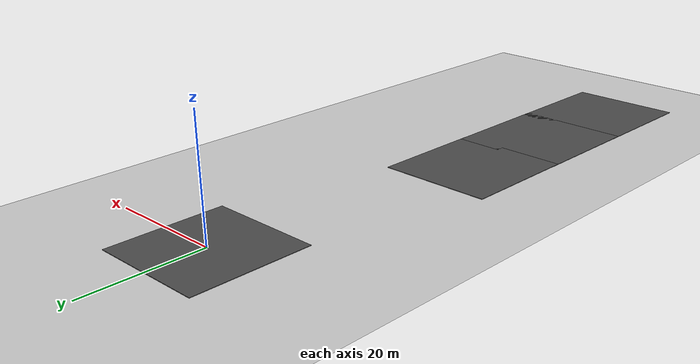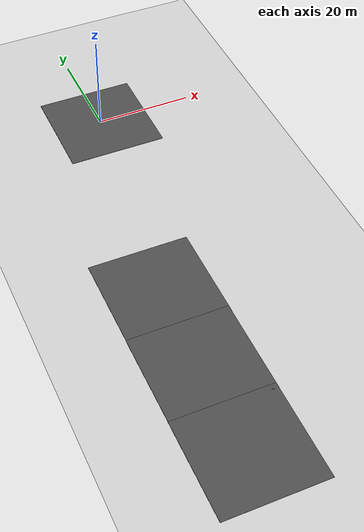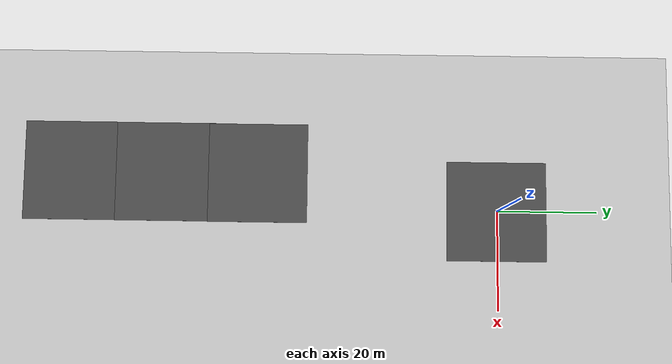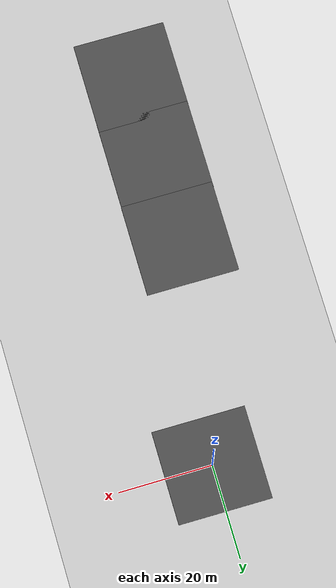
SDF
<sdf version="1.7">
 <world name="default">
  <model name="ground_plane">
   <static>1</static>
   <link name="link">
    <collision name="collision">
     <geometry><plane><normal>0 0 1</normal><size>100 100</size></plane></geometry>
     <surface><friction><ode><mu>100</mu><mu2>50</mu2></ode></friction></surface>
    </collision>
    <visual name="visual">
     <cast_shadows>0</cast_shadows>
     <geometry><plane><normal>0 0 1</normal><size>100 100</size></plane></geometry>
     <material>
      <script><uri>file://media/materials/scripts/gazebo.material</uri><name>Gazebo/Grey</name></script>
     </material>
    </visual>
    <velocity_decay><linear>0</linear><angular>0</angular></velocity_decay>
   </link>
  </model>
  <model name="asphalt_plane">
   <static>1</static>
   <link name="link">
    <collision name="collision"><geometry><box><size>20 20 0.1</size></box></geometry></collision>
    <visual name="visual">
     <cast_shadows>0</cast_shadows>
     <geometry><box><size>20 20 0.1</size></box></geometry>
     <material>
      <script>
       <uri>model://asphalt_plane/materials/scripts</uri>
       <uri>model://asphalt_plane/materials/textures</uri>
       <name>vrc/asphalt</name>
      </script>
     </material>
    </visual>
    <velocity_decay><linear>0</linear><angular>0</angular></velocity_decay>
   </link>
   <pose>0.076733 -0.110379 0 0 -0 0</pose>
  </model>
  <model name="asphalt_plane_clone_clone_clone_clone_1">
   <static>1</static>
   <link name="link">
    <collision name="collision"><geometry><box><size>20 20 0.1</size></box></geometry></collision>
    <visual name="visual">
     <cast_shadows>0</cast_shadows>
     <geometry><box><size>20 20 0.1</size></box></geometry>
     <material>
      <script>
       <uri>model://asphalt_plane/materials/scripts</uri>
       <uri>model://asphalt_plane/materials/textures</uri>
       <name>vrc/asphalt</name>
      </script>
     </material>
    </visual>
    <velocity_decay><linear>0</linear><angular>0</angular></velocity_decay>
   </link>
   <pose>-7.18355 -48.2361 0 0 -0 0</pose>
  </model>
  <model name="asphalt_plane_clone_clone_clone_clone_2">
   <static>1</static>
   <link name="link">
    <collision name="collision"><geometry><box><size>20 20 0.1</size></box></geometry></collision>
    <visual name="visual">
     <cast_shadows>0</cast_shadows>
     <geometry><box><size>20 20 0.1</size></box></geometry>
     <material>
      <script>
       <uri>model://asphalt_plane/materials/scripts</uri>
       <uri>model://asphalt_plane/materials/textures</uri>
       <name>vrc/asphalt</name>
      </script>
     </material>
    </visual>
    <velocity_decay><linear>0</linear><angular>0</angular></velocity_decay>
   </link>
   <pose>-7.23123 -66.9051 0 0 -0 0</pose>
  </model>
  <model name="asphalt_plane_clone_clone_clone_clone_3">
   <static>1</static>
   <link name="link">
    <collision name="collision"><geometry><box><size>20 20 0.1</size></box></geometry></collision>
    <visual name="visual">
     <cast_shadows>0</cast_shadows>
     <geometry><box><size>20 20 0.1</size></box></geometry>
     <material>
      <script>
       <uri>model://asphalt_plane/materials/scripts</uri>
       <uri>model://asphalt_plane/materials/textures</uri>
       <name>vrc/asphalt</name>
      </script>
     </material>
    </visual>
    <velocity_decay><linear>0</linear><angular>0</angular></velocity_decay>
   </link>
   <pose>-7.25575 -85.4217 0 0 -0 0</pose>
  </model>
 </world>
</sdf>
